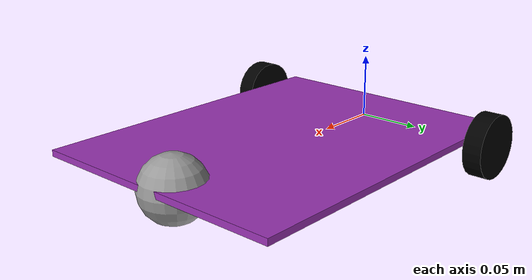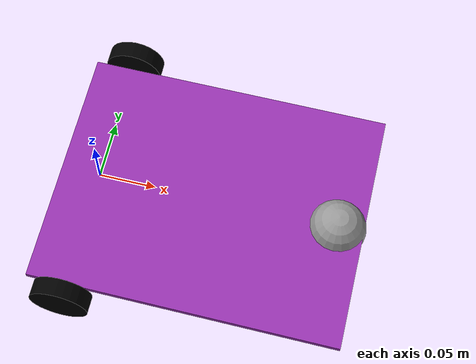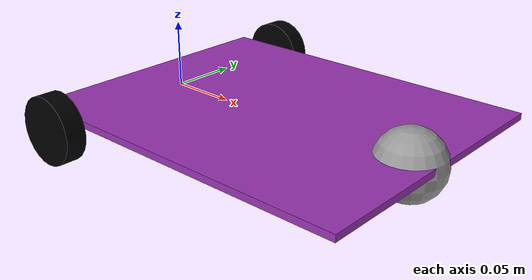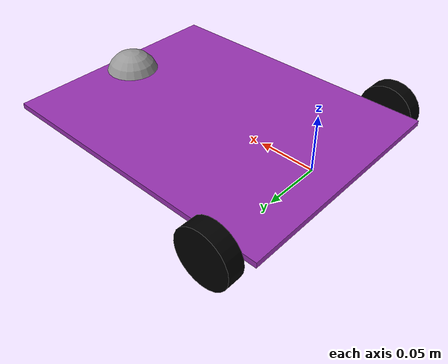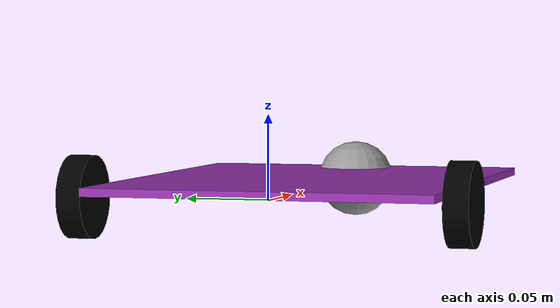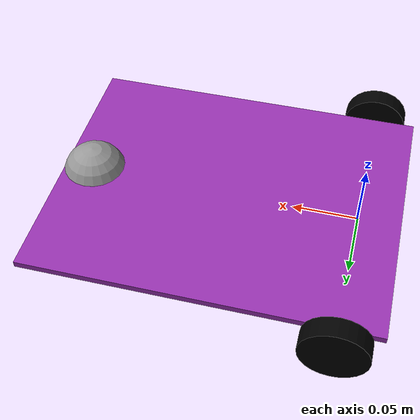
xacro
<?xml version="1.0"?>
<robot xmlns:xacro="http://www.ros.org/wiki/xacro" >

    <xacro:include filename="inertial_macros.xacro"/>

    <xacro:property name="chassis_length" value="0.335"/>
    <xacro:property name="chassis_width" value="0.265"/>
    <xacro:property name="chassis_height" value="0.138"/>
    <xacro:property name="chassis_mass" value="1.0"/>
    <xacro:property name="wheel_radius" value="0.033"/>
    <xacro:property name="wheel_thickness" value="0.026"/>
    <xacro:property name="wheel_mass" value="0.05"/>
    <xacro:property name="wheel_offset_x" value="0.226"/>
    <xacro:property name="wheel_offset_y" value="0.1485"/>
    <xacro:property name="wheel_offset_z" value="0.01"/>
    <xacro:property name="caster_wheel_radius" value="0.01"/>
    <xacro:property name="caster_wheel_mass" value="0.01"/>
    <xacro:property name="caster_wheel_offset_x" value="0.075"/>
    <xacro:property name="caster_wheel_offset_z" value="${wheel_offset_z - wheel_radius + caster_wheel_radius}"/>

    <material name="white">
        <color rgba="1 1 1 1" />
    </material>

    <material name="orange">
        <color rgba="1 0.3 0.1 1"/>
    </material>

    <material name="blue">
        <color rgba="0.2 0.2 1 1"/>
    </material>

    <material name="black">
        <color rgba="0 0 0 1"/>
    </material>

    <material name="red">
        <color rgba="1 0 0 1"/>
    </material>

    <!-- BASE LINK -->
    <link name="base_link">

    </link>

     <!-- BASE FOOTPRINT LINK -->
    <joint name="base_footprint_joint" type="fixed">
        <parent link="base_link"/>
        <child link="base_footprint"/>
        <origin xyz="0 0 -0.05" rpy="0 0 0"/>
    </joint>

    <link name="base_footprint">

    </link>

    <!-- CHASSIS LINK -->
    <joint name="chassis_joint" type="fixed">
        <parent link="base_link"/>
        <child link="chassis"/>
        <origin xyz="-0.05 0 0"/>
    </joint>

    <link name="chassis">
        <visual>
            <origin xyz="0.15 0 0.005" rpy="0 0 ${pi/2}"/>
            <geometry>
                <box size="0.21 0.265 0.005"/>
            </geometry>
            <material name="fontys_purple"/>
        </visual>
        <collision>
            <origin xyz="0.15 0 0.005"/>
            <geometry>
                <box size="0.21 0.265 0.005"/>
            </geometry>
        </collision>
        <xacro:inertial_box mass="0.5" x="0.3" y="0.3" z="0.15">
            <origin xyz="0.15 0 0.075" rpy="0 0 0"/>
        </xacro:inertial_box>
    </link>

    <gazebo reference="chassis">
        <material>Gazebo/Black</material>
    </gazebo>

    <!-- LEFT WHEEL LINK -->
    <joint name="left_wheel_joint" type="continuous">
        <parent link="base_link"/>
        <child link="left_wheel"/>
        <origin xyz="0 0.115 0" rpy="-${pi/2} 0 0" />
        <axis xyz="0 0 1"/>
    </joint>

    <link name="left_wheel">
        <visual>
            <geometry>
                <cylinder radius="0.025" length="0.015"/>
            </geometry>
            <material name="black"/>
        </visual>
        <collision>
            <geometry>
                <cylinder radius="0.025" length="0.015"/>
            </geometry>
        </collision>
        <xacro:inertial_cylinder mass="0.1" length="0.04" radius="0.05">
            <origin xyz="0 0 0" rpy="0 0 0"/>
        </xacro:inertial_cylinder>
    </link>

    <gazebo reference="left_wheel">
        <material>Gazebo/Yellow</material>
    </gazebo>

    <!-- RIGHT WHEEL LINK -->
    <joint name="right_wheel_joint" type="continuous">
        <parent link="base_link"/>
        <child link="right_wheel"/>
        <origin xyz="0 -0.115 0" rpy="${pi/2} 0 0" />
        <axis xyz="0 0 -1"/>
    </joint>

    <link name="right_wheel">
        <visual>
            <geometry>
                <cylinder radius="0.025" length="0.015"/>
            </geometry>
            <material name="black"/>
        </visual>
        <collision>
            <geometry>
                <cylinder radius="0.025" length="0.015"/>
            </geometry>
        </collision>
        <xacro:inertial_cylinder mass="0.1" length="0.04" radius="0.05">
            <origin xyz="0 0 0" rpy="0 0 0"/>
        </xacro:inertial_cylinder>
    </link>

    <gazebo reference="right_wheel">
        <material>Gazebo/Yellow</material>
    </gazebo>

    <!-- CASTER WHEEL LINK -->
    <joint name="caster_wheel_joint" type="fixed">
        <parent link="chassis"/>
        <child link="caster_wheel"/>
        <origin xyz="0.26 0 0"/>
    </joint>

    <link name="caster_wheel">
        <visual>
            <geometry>
                <sphere radius="0.025"/>
            </geometry>
            <material name="grey"/>
        </visual>
        <collision>
            <geometry>
                <sphere radius="0.025"/>
            </geometry>
        </collision>
        <xacro:inertial_sphere mass="0.1" radius="0.05">
            <origin xyz="0 0 0" rpy="0 0 0"/>
        </xacro:inertial_sphere>
    </link>

    <gazebo reference="caster_wheel">
        <material>Gazebo/White</material>
        <mu1 value="0.001"/> <!-- friction -->
        <mu2 value="0.001"/>
    </gazebo>

</robot>

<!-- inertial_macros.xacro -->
<robot xmlns:xacro="http://www.ros.org/wiki/xacro" >

    // <!-- Standard inertial calculations en.wikipedia.org/wiki/List_of_moments_of_inertia -->

    <xacro:macro name="inertial_sphere" params="mass radius *origin">
        <inertial>
            <xacro:insert_block name="origin"/>
            <mass value="${mass}" />
            <inertia ixx="${(2/5) * mass * (radius*radius)}" ixy="0.0" ixz="0.0"
                    iyy="${(2/5) * mass * (radius*radius)}" iyz="0.0"
                    izz="${(2/5) * mass * (radius*radius)}" />
        </inertial>
    </xacro:macro>

    <xacro:macro name="inertial_box" params="mass x y z *origin">
        <inertial>
            <xacro:insert_block name="origin"/>
            <mass value="${mass}" />
            <inertia ixx="${(1/12) * mass * (y*y+z*z)}" ixy="0.0" ixz="0.0"
                    iyy="${(1/12) * mass * (x*x+z*z)}" iyz="0.0"
                    izz="${(1/12) * mass * (x*x+y*y)}" />
        </inertial>
    </xacro:macro>

    <xacro:macro name="inertial_cylinder" params="mass length radius *origin">
        <inertial>
            <xacro:insert_block name="origin"/>
            <mass value="${mass}" />
            <inertia ixx="${(1/12) * mass * (3*radius*radius + length*length)}" ixy="0.0" ixz="0.0"
                    iyy="${(1/12) * mass * (3*radius*radius + length*length)}" iyz="0.0"
                    izz="${(1/2) * mass * (radius*radius)}" />
        </inertial>
    </xacro:macro>

</robot>
